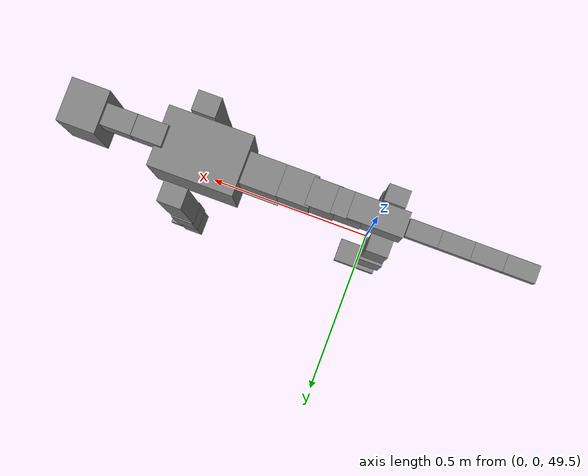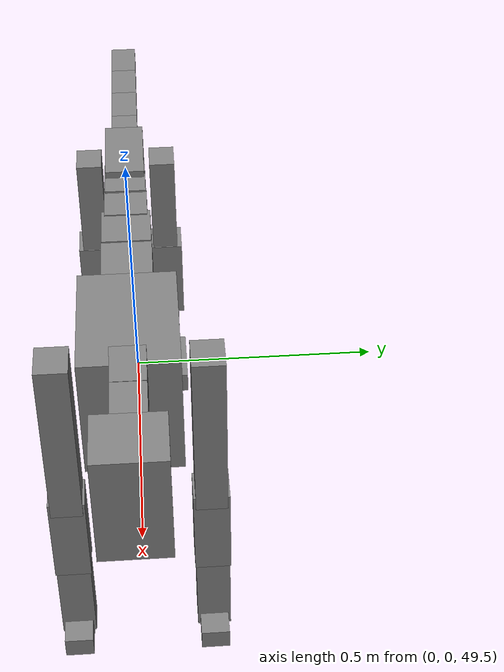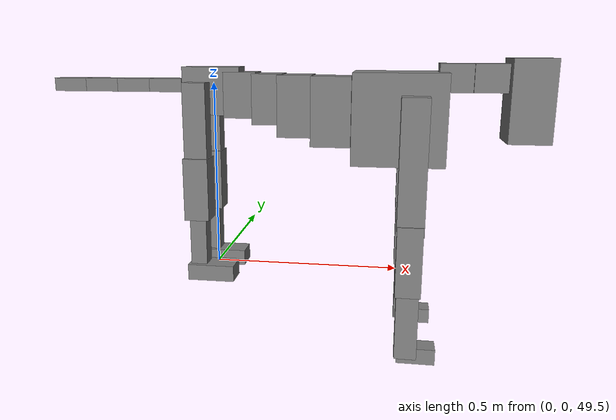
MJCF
<mujoco model="dog">

    <default>
        <joint armature="0.02" stiffness="1" damping="0.2" limited="true"/>
        <geom condim="3" friction="1 0.05 0.05" margin="0.01"/>
        <motor ctrllimited="true" ctrlrange="-1.0 1.0" forcelimited="true" gear="50"/>
    </default>

    <compiler inertiafromgeom="true" angle="radian"/>

    <option timestep="0.016" iterations="50" tolerance="1e-10" solver="Newton" jacobian="dense" cone="pyramidal"/>

    <size nconmax="20000" njmax="60000" nstack="5000000"/>
    <visual>
        <map force="0.1" zfar="30"/>
        <rgba haze="0.15 0.25 0.35 1"/>
        <quality shadowsize="2048"/>
        <global offwidth="800" offheight="800"/>
    </visual>

    <asset>
        <texture type="skybox" builtin="gradient" rgb1="0.3 0.5 0.7" rgb2="0 0 0" width="512" height="512"/>
        <texture name="texplane" type="2d" builtin="checker" rgb1=".2 .3 .4" rgb2=".1 0.15 0.2" width="512" height="512"
                 mark="cross" markrgb=".8 .8 .8"/>
        <texture name="texgeom" type="cube" builtin="flat" mark="cross" width="127" height="1278" rgb1="0.8 0.6 0.4"
                 rgb2="0.8 0.6 0.4" markrgb="1 1 1" random="0.01"/>

        <material name="matplane" reflectance="0.3" texture="texplane" texrepeat="1 1" texuniform="true"/>
        <material name="matgeom" texture="texgeom" texuniform="true" rgba="0.8 0.6 .4 1"/>
    </asset>

    <worldbody>
        <geom name="floor" pos="0 0 0" size="0 0 .25" type="plane" material="matplane" condim="3"/>

        <light directional="false" diffuse=".2 .2 .2" specular="0 0 0" pos="0 0 5" dir="0 0 -1" castshadow="false"/>
        <light mode="targetbodycom" target="torso" directional="false" diffuse=".8 .8 .8" specular="0.3 0.3 0.3"
               pos="0 0 4.0" dir="0 0 -1"/>

        <body name="root" pos="0 0 50">
            <freejoint name="root_1"/>
            <geom type="box" pos="0 0 -0.02" size="0.0774  0.0358  0.063" density="2030"/>

            <body name="spine1" pos="0.054 0 0">
                <joint name="spine1_y" axis="0 1 0" range="0 0.7" limited="true"/>
                <geom type="box" pos="0.02375 0 -0.03" size="0.04375  0.0375  0.05985" density="2030"/>

                <body name="spine2" pos="0.0612 0 0">
                    <joint name="spine2_y" axis="0 1 0" range="-0.15 0.15" limited="true"/>
                    <geom type="box" pos="0.03555  0  -0.04" size="0.04055  0.039  0.06615" density="2030"/>

                    <body name="spine3" pos="0.0730 0 0">
                        <joint name="spine3_y" axis="0 1 0" range="-0.15 0.15" limited="true"/>
                        <geom type="box" pos="0.03555  0  -0.057" size="0.04555  0.0445  0.081" density="2030"/>

                        <body name="spine4" pos="0.0780 0 0">
                            <joint name="spine4_y" axis="0 1 0" range="-0.15 0.15" limited="true"/>
                            <geom type="box" pos="0.05265  0  -0.07" size="0.05265  0.045  0.09135" density="2030"/>

                            <body name="torso" pos="0.1082 0 0">
                                <joint name="torso_y" axis="0 1 0" range="-0.15 0.15" limited="true"/>
                                <geom type="box" pos="0.11925  0  -0.085" size="0.11925  0.085  0.11745"
                                      density="2030"/>

                                <body name="neck1" pos="0.2160  0   0.0180">
                                    <joint name="neck1_y" axis="0 1 0" range="-1.2  -1" limited="true"/>
                                    <geom type="box" pos="0.0423  0  0" size="0.0423  0.03  0.036" density="2325"/>

                                    <body name="neck2" pos="0.0853  0  0">
                                        <joint name="neck2_y" axis="0 1 0" range="0.1  0" limited="true"/>
                                        <geom type="box" pos="0.0423  0  0" size="0.0423  0.03  0.036" density="2325"/>

                                        <body name="head" pos="0.0853  0  0">
                                            <joint name="head_y" axis="0 1 0" range="-0.3  -0.2" limited="true"/>
                                            <geom type="box" pos="0.0531  0  -0.055" size="0.0531  0.06  0.1044"
                                                  density="4030"/>

                                        </body>
                                    </body>
                                </body>

                                <body name="front_shoulder" pos="0.156  0   -0.0480">
                                    <joint name="front_shoulder_y" axis="0 1 0" range="-1 1.5" limited="true"/>
                                    <geom type="box" pos="0 0.13 -0.1443" size="0.0342  0.0292  0.1710" density="1158"/>
                                    <geom type="box" pos="0 -0.13 -0.1443" size="0.0342  0.0292  0.1710"
                                          density="1158"/>

                                    <body name="front_elbow" pos="0  0  -0.2886">
                                        <joint name="front_elbow_y" axis="0 1 0" range="-2 0" limited="true"/>
                                        <geom type="box" pos="0 0.13 -0.0923" size="0.0325  0.0333  0.0923"
                                              density="1081"/>
                                        <geom type="box" pos="0 -0.13 -0.0923" size="0.0325  0.0333  0.0923"
                                              density="1081"/>

                                        <body name="front_wrist" pos="0  0  -0.1846">
                                            <joint name="front_wrist_y" axis="0 1 0" range="-0.2 0" limited="true"/>
                                            <geom type="box" pos="0 0.13 -0.0776" size="0.0285  0.0316  0.0908"
                                                  density="1664"/>
                                            <geom type="box" pos="0 -0.13 -0.0776" size="0.0285  0.0316  0.0908"
                                                  density="1664"/>

                                            <body name="front_finger_end" pos="0  0  -0.1553">
                                                <joint name="front_finger_y" axis="0 1 0" range="-0.4 1"
                                                       limited="true"/>
                                                <geom type="box" pos="0.0268  0.13  -0.0060"
                                                      size="0.0491  0.0268  0.0210" density="1515"/>
                                                <geom type="box" pos="0.0268  -0.13  -0.0060"
                                                      size="0.0491  0.0268  0.0210" density="1515"/>

                                            </body>

                                        </body>
                                    </body>
                                </body>

                            </body>
                        </body>
                    </body>
                </body>
            </body>

            <body name="back_hip" pos="-0.03 0 -0.018">
                <joint name="back_hip_y" axis="0 1 0" range="-1.5 0.3" limited="true"/>
                <geom type="box" pos="0 0.07 -0.0945" size="0.0306  0.0240  0.1173" density="1154"/>
                <geom type="box" pos="0 -0.07 -0.0945" size="0.0306  0.0240  0.1173" density="1154"/>

                <body name="back_knee" pos="0  0  -0.1890">
                    <joint name="back_knee_y" axis="0 1 0" range="0 2.8" limited="true"/>
                    <geom type="box" pos="0 0.07 -0.0676" size="0.0332  0.0327  0.0831" density="1227"/>
                    <geom type="box" pos="0 -0.07 -0.0676" size="0.0332  0.0327  0.0831" density="1227"/>

                    <body name="back_ankle" pos="0  0  -0.1351">
                        <joint name="back_ankle_y" axis="0 1 0" range="-2.2 0" limited="true"/>
                        <geom type="box" pos="0 0.07 -0.0773" size="0.0220  0.0220  0.0885" density="1284"/>
                        <geom type="box" pos="0 -0.07 -0.0773" size="0.0220  0.0220  0.0885" density="1284"/>

                        <body name="back_toe_end" pos="0  0  -0.1545">
                            <joint name="back_toe_y" axis="0 1 0" range="-0.4 1" limited="true"/>
                            <geom type="box" pos="0.0344  0.07  -0.0066" size="0.0630  0.0344  0.0216" density="1515"/>
                            <geom type="box" pos="0.0344  -0.07  -0.0066" size="0.0630  0.0344  0.0216" density="1515"/>

                        </body>
                    </body>
                </body>
            </body>

            <body name="tail1" pos="-0.074 0 -0.006">
                <joint name="tail1_y" axis="0 1 0" range="-0.2 0.2" limited="true"/>
                <geom type="box" pos="-0.0536  0  0" size="0.045  0.025  0.0175" density="1587"/>

                <body name="tail2" pos="-0.09 0 0">
                    <joint name="tail2_y" axis="0 1 0" range="-0.2 0.2" limited="true"/>
                    <geom type="box" pos="-0.0536  0  0" size="0.045  0.025  0.0175" density="1587"/>

                    <body name="tail3" pos="-0.09 0 0">
                        <joint name="tail3_y" axis="0 1 0" range="-0.2 0.2" limited="true"/>
                        <geom type="box" pos="-0.0536  0  0" size="0.045  0.025  0.0175" density="1587"/>

                        <body name="tail4" pos="-0.09 0 0">
                            <joint name="tail4_y" axis="0 1 0" range="-0.2 0.2" limited="true"/>
                            <geom type="box" pos="-0.0536  0  0" size="0.045  0.025  0.0175" density="1587"/>

                        </body>
                    </body>
                </body>
            </body>
        </body>
    </worldbody>

    <actuator>
        <motor joint="spine1_y" forcerange="-150 150     "/>
        <motor joint="spine2_y" forcerange="-150 150     "/>
        <motor joint="spine3_y" forcerange="-150 150     "/>
        <motor joint="spine4_y" forcerange="-150 150     "/>
        <motor joint="torso_y" forcerange="-150 150     "/>
        <motor joint="neck1_y" forcerange="-100 100       "/>
        <motor joint="neck2_y" forcerange="-100 100       "/>
        <motor joint="head_y" forcerange="-150 150       "/>
        <motor joint="front_shoulder_y" forcerange="-181.89 113.07"/>
        <motor joint="front_elbow_y" forcerange="-150.16 191.72"/>
        <motor joint="front_wrist_y" forcerange="-139.74 113.19"/>
        <motor joint="front_finger_y" forcerange="-66.63 36.22"/>
        <motor joint="back_hip_y" forcerange="-306.40 213.44"/>
        <motor joint="back_knee_y" forcerange="-347.91 327.64"/>
        <motor joint="back_angle_y" forcerange="-125.60 126.62"/>
        <motor joint="back_toe_y" forcerange="-62.49 132.45"/>
        <motor joint="tail1_y" forcerange="-50 50     "/>
        <motor joint="tail2_y" forcerange="-50 50     "/>
        <motor joint="tail3_y" forcerange="-50 50     "/>
        <motor joint="tail4_y" forcerange="-50 50     "/>
    </actuator>
</mujoco>
